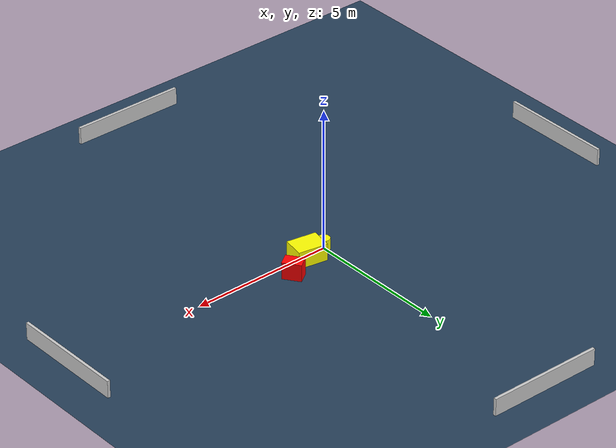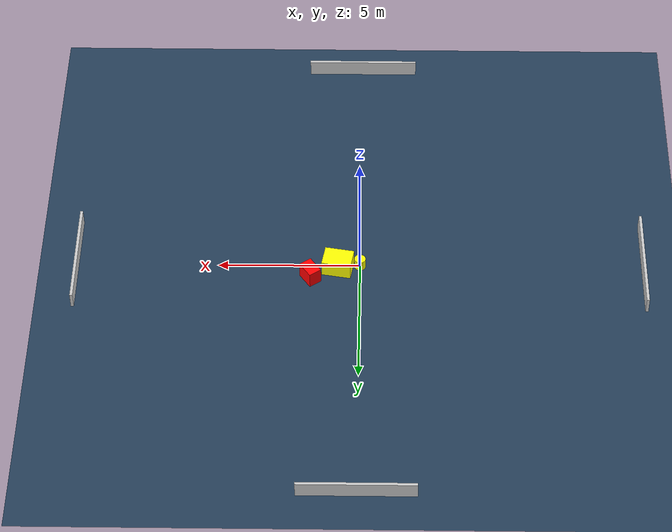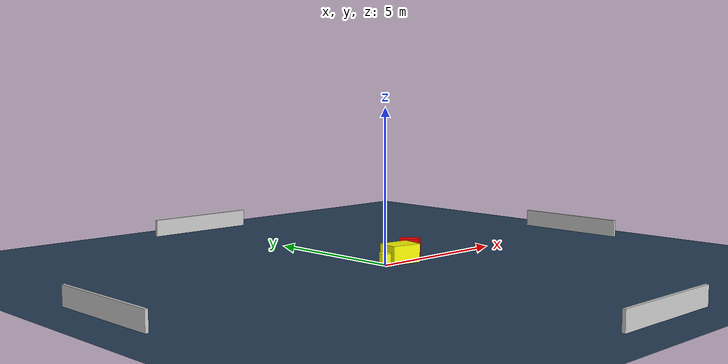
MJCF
<?xml version="1.0" ?>
<mujoco model="generated_environment">
  <option timestep="0.01" integrator="RK4" cone="elliptic"/>
  <default>
    <geom density="1"/>
  </default>
  <asset>
    <texture builtin="gradient" height="3072" name="skybox" rgb1="0.3 0.5 0.7" rgb2="0 0 0" type="skybox" width="512"/>
    <texture builtin="checker" height="300" name="groundplane" rgb1="0.2 0.3 0.4" rgb2="0.1 0.2 0.3" type="2d" width="300"/>
    <material name="groundplane" reflectance="0.2" texrepeat="5 5" texture="groundplane"/>
  </asset>
  <worldbody>
    <light dir="0 0 -1" directional="true" pos="0 0 1.5"/>
    <geom condim="3" friction="0.5 0.005 0.001" material="groundplane" name="floor" pos="0 0 0" size="0 0 0.05" type="plane"/>
    <body name="walls">
      <geom name="wall_1" condim="4" pos="-10.0 0.0 0.3" rgba="0.800000011920929 0.800000011920929 0.800000011920929 1.0" size="0.05 2.0 0.3" type="box"/>
      <geom name="wall_2" condim="4" pos="10.0 0.0 0.3" rgba="0.800000011920929 0.800000011920929 0.800000011920929 1.0" size="0.05 2.0 0.3" type="box"/>
      <geom name="wall_3" condim="4" pos="0.0 -10.0 0.3" rgba="0.800000011920929 0.800000011920929 0.800000011920929 1.0" size="2.0 0.05 0.3" type="box"/>
      <geom name="wall_4" condim="4" pos="0.0 10.0 0.3" rgba="0.800000011920929 0.800000011920929 0.800000011920929 1.0" size="2.0 0.05 0.3" type="box"/>
    </body>
    <body name="robot">
      <joint name="joint_x" type="slide" pos="0 0 0" axis="1 0 0"/>
      <joint name="joint_y" type="slide" pos="0 0 0" axis="0 1 0"/>
      <geom name="robot" type="cylinder" pos="0.0 0.0 0.2" size="0.2 0.2 0.0" mass="5.0" friction="1.0 0.005 0.0001" condim="4" rgba="1.0 1.0 0.0 1.0"/>
    </body>
    <body name="obstacle_1_movable">
      <geom name="obstacle_1_movable" condim="4" pos="0.7789046746956081 0.1081957535069098 0.3" euler="0 0 260.2436244002291" friction="0.0 0.005 0.001" rgba="1.0 1.0 0.0 1.0" size="0.3831091589238034 0.5165869980733746 0.3" type="box" mass="0.1"/>
      <joint type="free"/>
    </body>
    <body name="obstacle_2_static">
      <geom name="obstacle_2_static" condim="4" pos="1.7415535513071676 0.5885030855243006 0.3" euler="0 0 215.04588493489774" friction="0.0 0.005 0.001" rgba="1.0 0.0 0.0 1.0" size="0.2343107562816047 0.32445664508922506 0.3" type="box"/>
    </body>
  </worldbody>
  <actuator>
    <motor name="actuator_x" joint="joint_x" gear="1" ctrlrange="-1 1"/>
    <motor name="actuator_y" joint="joint_y" gear="1" ctrlrange="-1 1"/>
  </actuator>
</mujoco>
